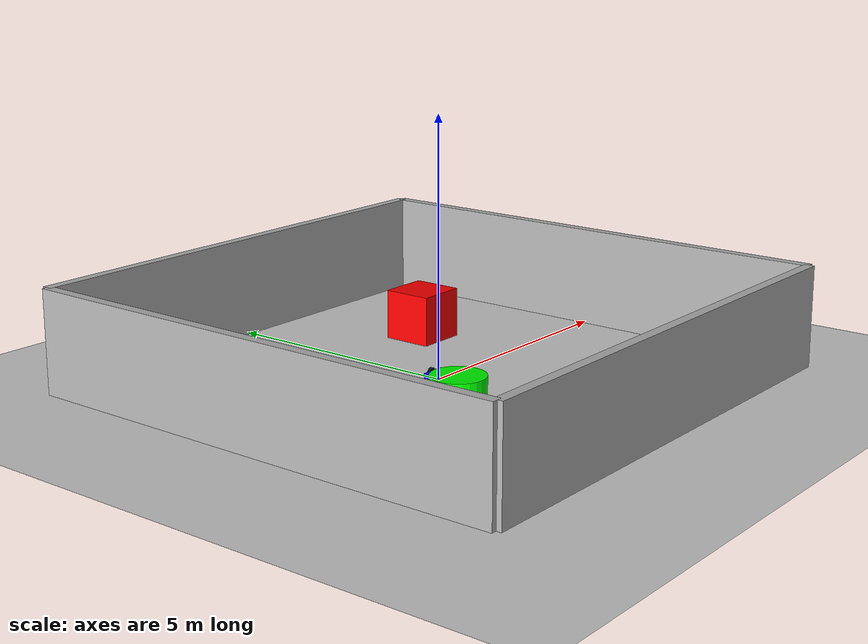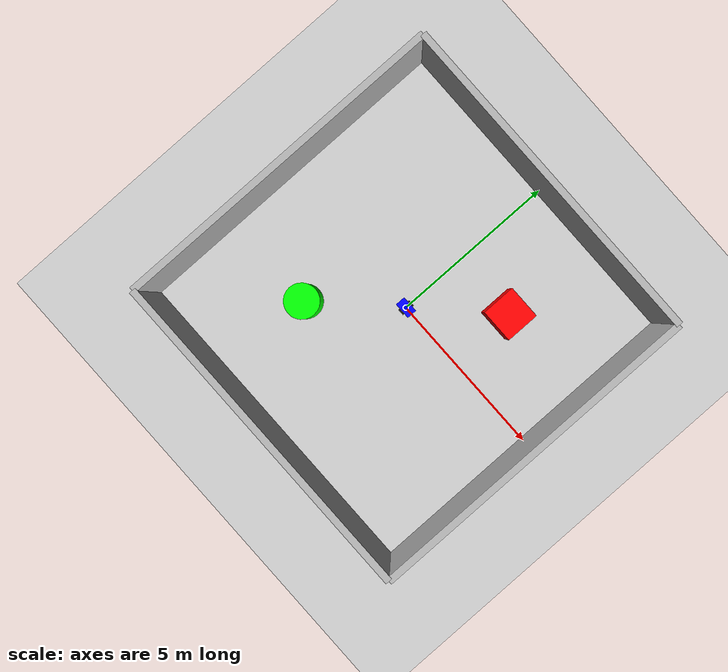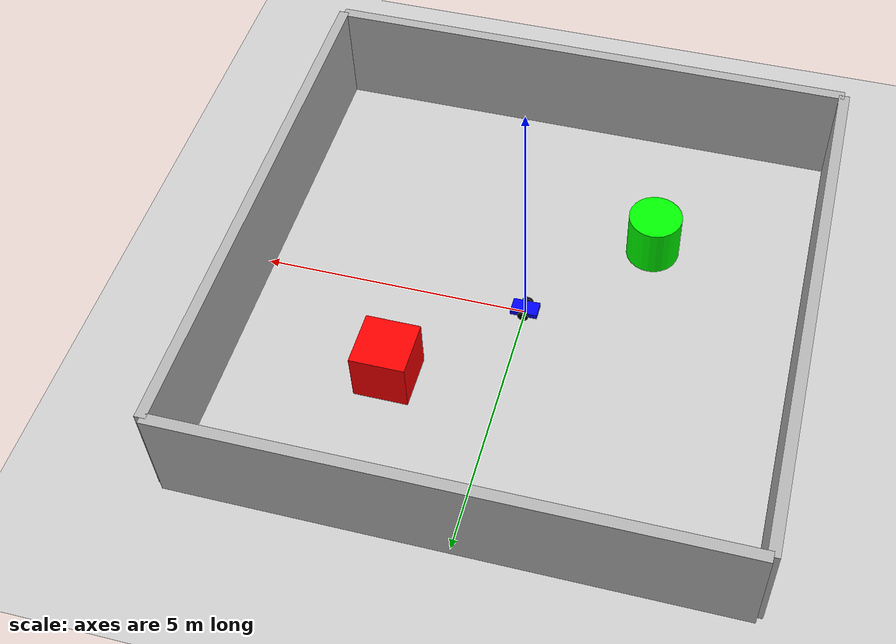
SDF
<?xml version="1.0" ?>
<!-- シンプルな差動二輪ロボットのSDFファイル -->
<sdf version="1.8">
    <world name="simple_world">
        <!-- 物理シミュレーションの設定 -->
        <physics name="1ms" type="ignored">
            <max_step_size>0.001</max_step_size>    <!-- シミュレーションの時間刻み -->
            <real_time_factor>1.0</real_time_factor>    <!-- リアルタイム係数 -->
        </physics>

        <!-- 必要なプラグインの読み込み -->
        <plugin filename="gz-sim-physics-system" name="gz::sim::systems::Physics"/>
        <plugin filename="gz-sim-scene-broadcaster-system" name="gz::sim::systems::SceneBroadcaster"/>
        <plugin filename="gz-sim-user-commands-system" name="gz::sim::systems::UserCommands"/>
        <plugin filename="gz-sim-sensors-system" name="gz::sim::systems::Sensors"/>

        <!-- 太陽光源の設定 -->
        <light type="directional" name="sun">
            <cast_shadows>true</cast_shadows>
            <pose>0 0 10 0 0 0</pose>    <!-- 光源の位置 -->
            <diffuse>0.8 0.8 0.8 1</diffuse>    <!-- 拡散光 -->
            <specular>0.2 0.2 0.2 1</specular>    <!-- 鏡面光 -->
            <attenuation>
                <range>1000</range>
                <constant>0.9</constant>
                <linear>0.01</linear>
                <quadratic>0.001</quadratic>
            </attenuation>
            <direction>-0.5 0.1 -0.9</direction>    <!-- 光の方向 -->
        </light>

        <!-- 地面モデルの設定 -->
        <model name="ground_plane">
            <static>true</static>
            <link name="link">
                <collision name="collision">
                    <geometry>
                        <plane>
                            <normal>0 0 1</normal>
                        </plane>
                    </geometry>
                </collision>
                <visual name="visual">
                    <geometry>
                        <plane>
                            <normal>0 0 1</normal>
                            <size>100 100</size>    <!-- 地面の大きさ -->
                        </plane>
                    </geometry>
                    <material>
                        <ambient>0.8 0.8 0.8 1</ambient>
                        <diffuse>0.8 0.8 0.8 1</diffuse>
                        <specular>0.8 0.8 0.8 1</specular>
                    </material>
                </visual>
            </link>
        </model>

        <!-- 障害物1: 箱 -->
        <model name="box1">
            <static>true</static>
            <pose>2 2 0.5 0 0 0</pose>
            <link name="link">
                <collision name="collision">
                    <geometry>
                        <box>
                            <size>1 1 1</size>
                        </box>
                    </geometry>
                </collision>
                <visual name="visual">
                    <geometry>
                        <box>
                            <size>1 1 1</size>
                        </box>
                    </geometry>
                    <material>
                        <ambient>1 0 0 1</ambient>
                        <diffuse>1 0 0 1</diffuse>
                        <specular>1 0 0 1</specular>
                    </material>
                </visual>
            </link>
        </model>

        <!-- 障害物2: 円柱 -->
        <model name="cylinder1">
            <static>true</static>
            <pose>-2 -2 0.5 0 0 0</pose>
            <link name="link">
                <collision name="collision">
                    <geometry>
                        <cylinder>
                            <radius>0.5</radius>
                            <length>1.0</length>
                        </cylinder>
                    </geometry>
                </collision>
                <visual name="visual">
                    <geometry>
                        <cylinder>
                            <radius>0.5</radius>
                            <length>1.0</length>
                        </cylinder>
                    </geometry>
                    <material>
                        <ambient>0 1 0 1</ambient>
                        <diffuse>0 1 0 1</diffuse>
                        <specular>0 1 0 1</specular>
                    </material>
                </visual>
            </link>
        </model>

        <!-- 北側の壁 -->
        <model name="north_wall">
            <static>true</static>
            <pose>0 5 1 0 0 0</pose>
            <link name="link">
                <collision name="collision">
                    <geometry>
                        <box>
                            <size>10 0.2 2</size>
                        </box>
                    </geometry>
                </collision>
                <visual name="visual">
                    <geometry>
                        <box>
                            <size>10 0.2 2</size>
                        </box>
                    </geometry>
                    <material>
                        <ambient>0.7 0.7 0.7 1</ambient>
                        <diffuse>0.7 0.7 0.7 1</diffuse>
                        <specular>0.7 0.7 0.7 1</specular>
                    </material>
                </visual>
            </link>
        </model>

        <!-- 南側の壁 -->
        <model name="south_wall">
            <static>true</static>
            <pose>0 -5 1 0 0 0</pose>
            <link name="link">
                <collision name="collision">
                    <geometry>
                        <box>
                            <size>10 0.2 2</size>
                        </box>
                    </geometry>
                </collision>
                <visual name="visual">
                    <geometry>
                        <box>
                            <size>10 0.2 2</size>
                        </box>
                    </geometry>
                    <material>
                        <ambient>0.7 0.7 0.7 1</ambient>
                        <diffuse>0.7 0.7 0.7 1</diffuse>
                        <specular>0.7 0.7 0.7 1</specular>
                    </material>
                </visual>
            </link>
        </model>

        <!-- 東側の壁 -->
        <model name="east_wall">
            <static>true</static>
            <pose>5 0 1 0 0 1.5708</pose>
            <link name="link">
                <collision name="collision">
                    <geometry>
                        <box>
                            <size>10 0.2 2</size>
                        </box>
                    </geometry>
                </collision>
                <visual name="visual">
                    <geometry>
                        <box>
                            <size>10 0.2 2</size>
                        </box>
                    </geometry>
                    <material>
                        <ambient>0.7 0.7 0.7 1</ambient>
                        <diffuse>0.7 0.7 0.7 1</diffuse>
                        <specular>0.7 0.7 0.7 1</specular>
                    </material>
                </visual>
            </link>
        </model>

        <!-- 西側の壁 -->
        <model name="west_wall">
            <static>true</static>
            <pose>-5 0 1 0 0 1.5708</pose>
            <link name="link">
                <collision name="collision">
                    <geometry>
                        <box>
                            <size>10 0.2 2</size>
                        </box>
                    </geometry>
                </collision>
                <visual name="visual">
                    <geometry>
                        <box>
                            <size>10 0.2 2</size>
                        </box>
                    </geometry>
                    <material>
                        <ambient>0.7 0.7 0.7 1</ambient>
                        <diffuse>0.7 0.7 0.7 1</diffuse>
                        <specular>0.7 0.7 0.7 1</specular>
                    </material>
                </visual>
            </link>
        </model>

        <!-- ロボット本体の設定 -->
        <model name="simple_robot">
            <pose>0 0 0.1 0 0 0</pose>    <!-- ロボットの初期位置 -->

            <!-- ベースリンク（本体） -->
            <link name="base_link">
                <inertial>
                    <mass>1.0</mass>    <!-- 本体の質量 -->
                    <inertia>    <!-- 慣性モーメント -->
                        <ixx>0.0835</ixx>
                        <ixy>0</ixy>
                        <ixz>0</ixz>
                        <iyy>0.1209</iyy>
                        <iyz>0</iyz>
                        <izz>0.1209</izz>
                    </inertia>
                </inertial>
                <visual name="visual">
                    <geometry>
                        <box>
                            <size>0.5 0.3 0.1</size>    <!-- 本体のサイズ -->
                        </box>
                    </geometry>
                    <material>
                        <ambient>0 0 1 1</ambient>    <!-- 青色 -->
                        <diffuse>0 0 1 1</diffuse>
                        <specular>0 0 1 1</specular>
                    </material>
                </visual>
                <collision name="collision">
                    <geometry>
                        <box>
                            <size>0.5 0.3 0.1</size>
                        </box>
                    </geometry>
                </collision>

                <!-- LiDAR -->
                <sensor name="lidar" type="gpu_lidar">
                    <pose>0.2 0 0.15 0 0 0</pose>
                    <topic>lidar</topic>
                    <update_rate>10</update_rate>
                    <lidar>
                        <scan>
                            <horizontal>
                                <samples>360</samples>
                                <resolution>1</resolution>
                                <min_angle>-3.14159</min_angle>
                                <max_angle>3.14159</max_angle>
                            </horizontal>
                        </scan>
                        <range>
                            <min>0.1</min>
                            <max>10.0</max>
                            <resolution>0.01</resolution>
                        </range>
                        <noise>
                            <type>gaussian</type>
                            <mean>0.0</mean>
                            <stddev>0.01</stddev>
                        </noise>
                    </lidar>
                    <visualize>true</visualize>
                    <always_on>1</always_on>
                </sensor>
            </link>

            <!-- 左車輪 -->
            <link name="left_wheel">
                <pose relative_to="base_link">0 0.175 0 -1.5708 0 0</pose>    <!-- 左車輪の位置 -->
                <inertial>
                    <mass>0.5</mass>    <!-- 車輪の質量 -->
                    <inertia>
                        <ixx>0.00125</ixx>
                        <ixy>0</ixy>
                        <ixz>0</ixz>
                        <iyy>0.00125</iyy>
                        <iyz>0</iyz>
                        <izz>0.002</izz>
                    </inertia>
                </inertial>
                <visual name="visual">
                    <geometry>
                        <cylinder>
                            <radius>0.1</radius>    <!-- 車輪の半径 -->
                            <length>0.05</length>    <!-- 車輪の幅 -->
                        </cylinder>
                    </geometry>
                    <material>
                        <ambient>0 0 0 1</ambient>    <!-- 黒色 -->
                        <diffuse>0 0 0 1</diffuse>
                        <specular>0 0 0 1</specular>
                    </material>
                </visual>
                <collision name="collision">
                    <geometry>
                        <cylinder>
                            <radius>0.1</radius>
                            <length>0.05</length>
                        </cylinder>
                    </geometry>
                </collision>
            </link>

            <!-- 右車輪（左車輪と同様の設定） -->
            <link name="right_wheel">
                <pose relative_to="base_link">0 -0.175 0 -1.5708 0 0</pose>    <!-- 右車輪の位置 -->
                <inertial>
                    <mass>0.5</mass>
                    <inertia>
                        <ixx>0.00125</ixx>
                        <ixy>0</ixy>
                        <ixz>0</ixz>
                        <iyy>0.00125</iyy>
                        <iyz>0</iyz>
                        <izz>0.002</izz>
                    </inertia>
                </inertial>
                <visual name="visual">
                    <geometry>
                        <cylinder>
                            <radius>0.1</radius>
                            <length>0.05</length>
                        </cylinder>
                    </geometry>
                    <material>
                        <ambient>0 0 0 1</ambient>
                        <diffuse>0 0 0 1</diffuse>
                        <specular>0 0 0 1</specular>
                    </material>
                </visual>
                <collision name="collision">
                    <geometry>
                        <cylinder>
                            <radius>0.1</radius>
                            <length>0.05</length>
                        </cylinder>
                    </geometry>
                </collision>
            </link>

            <!-- キャスター（補助輪） -->
            <link name="caster">
                <pose relative_to="base_link">-0.2 0 -0.05 0 0 0</pose>    <!-- キャスターの位置 -->
                <inertial>
                    <mass>0.1</mass>    <!-- キャスターの質量 -->
                    <inertia>
                        <ixx>0.0001</ixx>
                        <ixy>0</ixy>
                        <ixz>0</ixz>
                        <iyy>0.0001</iyy>
                        <iyz>0</iyz>
                        <izz>0.0001</izz>
                    </inertia>
                </inertial>
                <collision name="collision">
                    <geometry>
                        <sphere>
                            <radius>0.05</radius>    <!-- キャスターの半径 -->
                        </sphere>
                    </geometry>
                </collision>
                <visual name="visual">
                    <geometry>
                        <sphere>
                            <radius>0.05</radius>
                        </sphere>
                    </geometry>
                    <material>
                        <ambient>0.8 0.8 0.8 1</ambient>    <!-- グレー色 -->
                        <diffuse>0.8 0.8 0.8 1</diffuse>
                        <specular>0.8 0.8 0.8 1</specular>
                    </material>
                </visual>
            </link>

            <!-- 左車輪のジョイント -->
            <joint name="left_wheel_joint" type="revolute">
                <parent>base_link</parent>
                <child>left_wheel</child>
                <axis>
                    <xyz>0 0 1</xyz>    <!-- 回転軸 -->
                    <limit>
                        <lower>-1.79769e+308</lower>    <!-- 回転制限なし -->
                        <upper>1.79769e+308</upper>
                    </limit>
                </axis>
            </joint>

            <!-- 右車輪のジョイント -->
            <joint name="right_wheel_joint" type="revolute">
                <parent>base_link</parent>
                <child>right_wheel</child>
                <axis>
                    <xyz>0 0 1</xyz>
                    <limit>
                        <lower>-1.79769e+308</lower>
                        <upper>1.79769e+308</upper>
                    </limit>
                </axis>
            </joint>

            <!-- キャスターのジョイント（固定） -->
            <joint name="caster_joint" type="fixed">
                <parent>base_link</parent>
                <child>caster</child>
            </joint>

            <!-- 差動駆動システムのプラグイン -->
            <plugin filename="gz-sim-diff-drive-system" name="gz::sim::systems::DiffDrive">
                <topic>cmd_vel</topic>    <!-- 速度指令のトピック名 -->
                <left_joint>left_wheel_joint</left_joint>    <!-- 左車輪のジョイント名 -->
                <right_joint>right_wheel_joint</right_joint>    <!-- 右車輪のジョイント名 -->
                <wheel_separation>0.35</wheel_separation>    <!-- 車輪間距離 -->
                <wheel_radius>0.1</wheel_radius>    <!-- 車輪半径 -->
                <odom_publish_frequency>50</odom_publish_frequency>    <!-- Odometry公開の頻度 -->
            </plugin>
        </model>
    </world>
</sdf>
